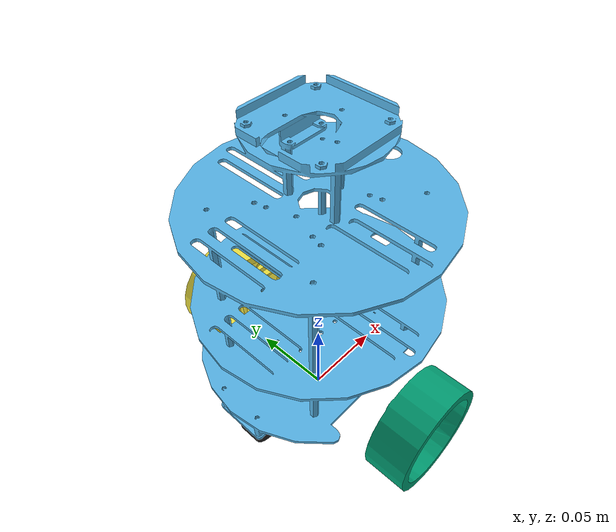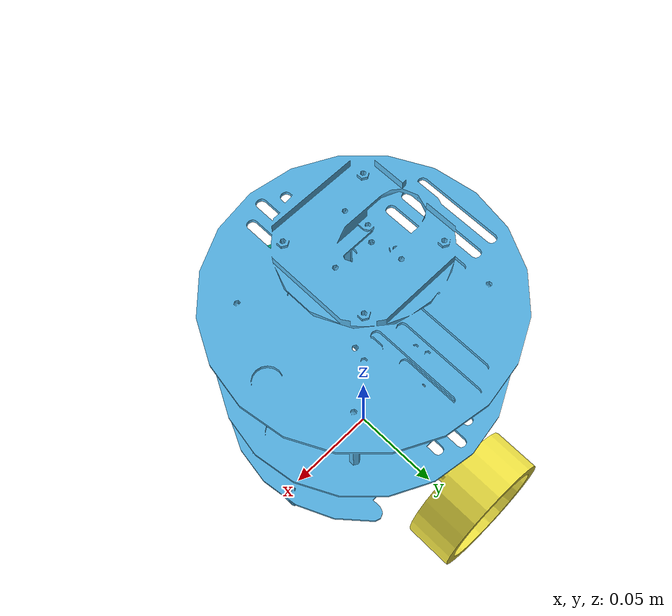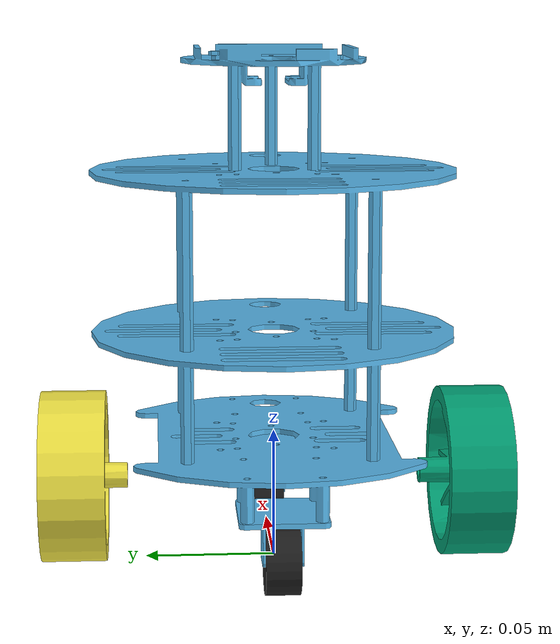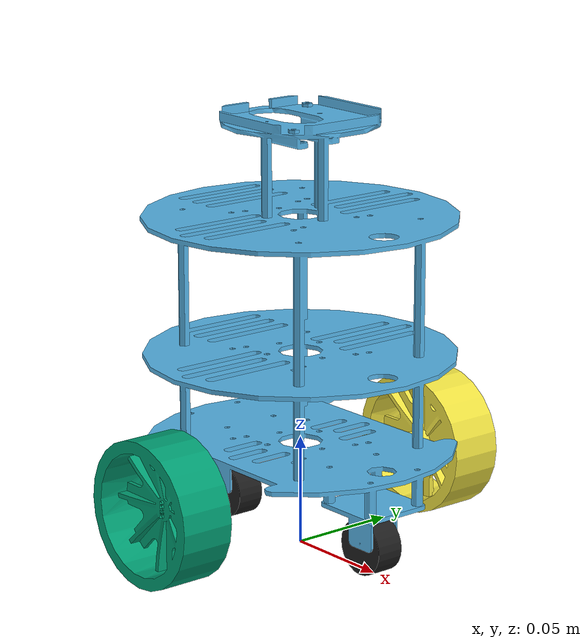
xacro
<?xml version="1.0"?>
<robot xmlns:xacro="http://www.ros.org/wiki/xacro">

    <xacro:property name="wheel_y_offset" value="0.0775"/>
    <xacro:property name="wheel_z_offset" value="0.0205"/>
    <xacro:property name="wheel_radius" value="0.033"/>
    <xacro:property name="wheel_length" value="0.025"/>
    <xacro:property name="robot_center_to_base_link_x_distance" value="0.054"/>
    <xacro:property name="robot_center_to_base_link_z_distance" value="0.1375"/>
    <xacro:property name="body_length" value="0.1855"/>
    <xacro:property name="body_radius" value="0.07"/>
    <xacro:property name="caster_wheel_radius" value="0.0125"/>
    <xacro:property name="caster_wheel_length" value="0.013"/>
    <xacro:property name="base_caster_wheel_link_distance" value="0.0485"/>
    <xacro:property name="base_link_inertia_z_offset" value="0.0925"/>
    <xacro:property name="lidar_radius" value="0.0278"/>
    <xacro:property name="lidar_length" value="0.0413"/>
    <xacro:property name="imu_length" value="0.025"/>
    <xacro:property name="imu_width" value="0.02"/>
    <xacro:property name="imu_height" value="0.0015"/>
    <xacro:property name="base_imu_z_distance" value="${body_length - 0.046}"/>

    <xacro:property name= "meshes_file_direction" value="package://my_robot_description/models/meshes"/>

    <!-- base_footprint -->
    <link name="base_footprint" />

    <!-- base_link -->
    <link name="base_link">
        <visual>
            <geometry>
                <mesh filename="${meshes_file_direction}/my_robot_base.stl" scale="0.001 0.001 0.001"/>
            </geometry>
            <material name="grünlichesGrau"/>
            <origin xyz="0.0 0.0 ${robot_center_to_base_link_z_distance}" rpy="${pi/2} 0.0 ${pi/2}"/>
        </visual>
        <collision>
            <geometry>
                <cylinder radius="${body_radius}" length="${body_length}"/>
            </geometry>
            <origin xyz="0.0 0.0 ${body_length / 2}" rpy="0.0 0.0 0.0"/>
        </collision>
        <xacro:box_inertia m="2.0" l="${body_length}" w="${body_radius * 2}" h="${body_radius * 2}"
                                xyz="0.0 0.0 ${wheel_z_offset + (body_length / 2) - 0.02}" rpy="0.0 0.0 0.0" />
    </link>

    <!-- footprint_base_joint -->
    <joint name="footprint_base_joint" type="fixed">
        <parent link="base_footprint"/>
        <child link="base_link"/>
        <origin xyz="0 0 ${caster_wheel_radius}" rpy= "0 0 0"/>
    </joint>

    <!-- wheel_link -->
    <xacro:macro name="wheel_link" params="prefix">
        <link name="${prefix}_wheel_link">
            <visual>
                <geometry>
                <mesh filename="${meshes_file_direction}/wheel.stl" scale="0.001 0.001 0.001"/>
                </geometry>
                <material name="grauBlau"/>
                <origin xyz="0.0 0.0 ${-wheel_length/2}" rpy="${pi/2}  0.0 0.0"/>
            </visual>
            <collision>
                <geometry>
                    <sphere radius="${wheel_radius}"/>
                </geometry>
                <origin xyz="0.0 0.0 0.0" rpy="0.0 0.0 0.0"/>
            </collision>
            <xacro:cylinder_inertia m="0.5" r="${wheel_radius}" h="${wheel_length}"
                                    xyz="0.0 0.0 0.0" rpy="0.0 0.0 0.0" />
        </link>
    </xacro:macro>

    <xacro:wheel_link prefix="right"/>
    <xacro:wheel_link prefix="left"/>

    <!-- base_left_wheel_joint -->
    <joint name="base_left_wheel_joint" type="continuous">
        <parent link="base_link"/>
        <child link="left_wheel_link"/>
        <origin xyz="0.0 ${wheel_y_offset} ${wheel_z_offset}" rpy= "${-pi/2} ${pi} ${pi}"/>
        <axis xyz="0 0 -1"/>
    </joint>

    <!-- base_right_wheel_joint -->
    <joint name="base_right_wheel_joint" type="continuous">
        <parent link="base_link"/>
        <child link="right_wheel_link"/>
        <origin xyz="0.0 ${-wheel_y_offset} ${wheel_z_offset}" rpy= "${-pi/2} 0.0 0.0"/>
        <axis xyz="0 0 1"/>
    </joint>

    <!-- caster-Wheel-link -->
    <xacro:macro name="caster_wheel_link" params="prefix">
        <link name="${prefix}_caster_wheel_link">
            <visual>
                <geometry>
                    <mesh filename="${meshes_file_direction}/caster_wheel.stl" scale="0.001 0.001 0.001"/>
                </geometry>
                <material name="black"/>
                <origin xyz="0.0 ${caster_wheel_length/2} 0.0" rpy="0.0 0.0 ${-pi/2}"/>
            </visual>
            <collision>
                <geometry>
                    <sphere radius="${caster_wheel_radius}"/>
                </geometry>
                <material name="black"/>
                <origin xyz="0.0 0.0 0.0" rpy="0.0 0.0 0.0"/>
            </collision>
            <xacro:cylinder_inertia m="0.250" r="${caster_wheel_radius}" h="${caster_wheel_length}"
                                    xyz="0.0 0.0 0.0" rpy="0.0 0.0 0.0" />
        </link>
    </xacro:macro>

    <xacro:caster_wheel_link prefix="front"/>
    <xacro:caster_wheel_link prefix="rear"/>

    <!--base_front_caster_wheel_joint-->
    <joint name="base_front_caster_wheel_joint" type="fixed">
        <parent link="base_link"/>
        <child link="front_caster_wheel_link"/>
        <origin xyz="${base_caster_wheel_link_distance} 0.0 0.00017" rpy= "0.0 0.0 0.0"/>

    </joint>

    <!--base_rear_caster_wheel_joint-->
    <joint name="base_rear_caster_wheel_joint" type="fixed">
        <parent link="base_link"/>
        <child link="rear_caster_wheel_link"/>
        <origin xyz="${-base_caster_wheel_link_distance} 0.0 0.00017" rpy= "0.0 0.0 0.0"/>
    </joint>

    <!-- odom_link -->

    <!-- base_link_odom_joint -->

    <!-- base_link_Joint -->

</robot>
